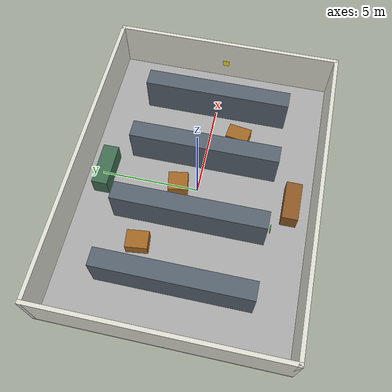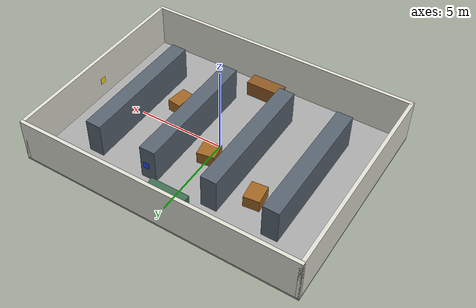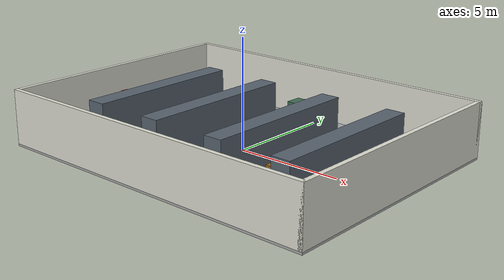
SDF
<?xml version='1.0' encoding='utf-8'?>
<sdf version="1.10">
  <!--Generated from scene.yaml; edit the specification, not this file.-->
  <world name="dev_warehouse_01">
    <physics name="physics" type="ignored">
      <max_step_size>0.004</max_step_size>
      <real_time_factor>1.0</real_time_factor>
      <real_time_update_rate>250</real_time_update_rate>
    </physics>
    <gravity>0 0 -9.81</gravity>
    <scene>
      <ambient>0.35 0.35 0.38 1</ambient>
      <background>0.72 0.78 0.86 1</background>
      <shadows>true</shadows>
    </scene>
    <plugin filename="gz-sim-physics-system" name="gz::sim::systems::Physics" />
    <plugin filename="gz-sim-user-commands-system" name="gz::sim::systems::UserCommands" />
    <plugin filename="gz-sim-scene-broadcaster-system" name="gz::sim::systems::SceneBroadcaster" />
    <plugin filename="gz-sim-sensors-system" name="gz::sim::systems::Sensors">
      <render_engine>ogre2</render_engine>
    </plugin>
    <plugin filename="gz-sim-imu-system" name="gz::sim::systems::Imu" />
    <plugin filename="gz-sim-contact-system" name="gz::sim::systems::Contact" />
    <light name="sun" type="directional">
      <cast_shadows>true</cast_shadows>
      <pose>0 0 10 0 0 0</pose>
      <diffuse>0.85 0.85 0.85 1</diffuse>
      <specular>0.2 0.2 0.2 1</specular>
      <attenuation>
        <range>1000</range>
        <constant>0.9</constant>
        <linear>0.01</linear>
        <quadratic>0.001</quadratic>
      </attenuation>
      <direction>-0.4 0.2 -0.9</direction>
    </light>
    <model name="floor">
      <static>true</static>
      <pose>0 0 -0.05 0 0 0</pose>
      <link name="body">
        <collision name="collision">
          <geometry>
            <box>
              <size>16 12 0.1</size>
            </box>
          </geometry>
        </collision>
        <visual name="visual">
          <geometry>
            <box>
              <size>16 12 0.1</size>
            </box>
          </geometry>
          <material>
            <ambient>0.58 0.58 0.58 1</ambient>
            <diffuse>0.667 0.667 0.667 1</diffuse>
          </material>
        </visual>
      </link>
    </model>
    <model name="wall_north">
      <static>true</static>
      <pose>0 5.9 1.25 0 0 0</pose>
      <link name="body">
        <collision name="collision">
          <geometry>
            <box>
              <size>16 0.2 2.5</size>
            </box>
          </geometry>
        </collision>
        <visual name="visual">
          <geometry>
            <box>
              <size>16 0.2 2.5</size>
            </box>
          </geometry>
          <material>
            <ambient>0.76 0.76 0.72 1</ambient>
            <diffuse>0.874 0.874 0.828 1</diffuse>
          </material>
        </visual>
      </link>
    </model>
    <model name="wall_south">
      <static>true</static>
      <pose>0 -5.9 1.25 0 0 0</pose>
      <link name="body">
        <collision name="collision">
          <geometry>
            <box>
              <size>16 0.2 2.5</size>
            </box>
          </geometry>
        </collision>
        <visual name="visual">
          <geometry>
            <box>
              <size>16 0.2 2.5</size>
            </box>
          </geometry>
          <material>
            <ambient>0.76 0.76 0.72 1</ambient>
            <diffuse>0.874 0.874 0.828 1</diffuse>
          </material>
        </visual>
      </link>
    </model>
    <model name="wall_west">
      <static>true</static>
      <pose>-7.9 0 1.25 0 0 0</pose>
      <link name="body">
        <collision name="collision">
          <geometry>
            <box>
              <size>0.2 12 2.5</size>
            </box>
          </geometry>
        </collision>
        <visual name="visual">
          <geometry>
            <box>
              <size>0.2 12 2.5</size>
            </box>
          </geometry>
          <material>
            <ambient>0.76 0.76 0.72 1</ambient>
            <diffuse>0.874 0.874 0.828 1</diffuse>
          </material>
        </visual>
      </link>
    </model>
    <model name="wall_east">
      <static>true</static>
      <pose>7.9 0 1.25 0 0 0</pose>
      <link name="body">
        <collision name="collision">
          <geometry>
            <box>
              <size>0.2 12 2.5</size>
            </box>
          </geometry>
        </collision>
        <visual name="visual">
          <geometry>
            <box>
              <size>0.2 12 2.5</size>
            </box>
          </geometry>
          <material>
            <ambient>0.76 0.76 0.72 1</ambient>
            <diffuse>0.874 0.874 0.828 1</diffuse>
          </material>
        </visual>
      </link>
    </model>
    <model name="shelf_01">
      <static>true</static>
      <pose>-5.2 0 1 0 0 0</pose>
      <link name="body">
        <collision name="collision">
          <geometry>
            <box>
              <size>0.9 7.6 2</size>
            </box>
          </geometry>
        </collision>
        <visual name="visual">
          <geometry>
            <box>
              <size>0.9 7.6 2</size>
            </box>
          </geometry>
          <material>
            <ambient>0.3 0.34 0.38 1</ambient>
            <diffuse>0.345 0.391 0.437 1</diffuse>
          </material>
        </visual>
      </link>
    </model>
    <model name="shelf_02">
      <static>true</static>
      <pose>-1.8 0 1 0 0 0</pose>
      <link name="body">
        <collision name="collision">
          <geometry>
            <box>
              <size>0.9 7.6 2</size>
            </box>
          </geometry>
        </collision>
        <visual name="visual">
          <geometry>
            <box>
              <size>0.9 7.6 2</size>
            </box>
          </geometry>
          <material>
            <ambient>0.3 0.34 0.38 1</ambient>
            <diffuse>0.345 0.391 0.437 1</diffuse>
          </material>
        </visual>
      </link>
    </model>
    <model name="shelf_03">
      <static>true</static>
      <pose>1.8 0 1 0 0 0</pose>
      <link name="body">
        <collision name="collision">
          <geometry>
            <box>
              <size>0.9 7.6 2</size>
            </box>
          </geometry>
        </collision>
        <visual name="visual">
          <geometry>
            <box>
              <size>0.9 7.6 2</size>
            </box>
          </geometry>
          <material>
            <ambient>0.3 0.34 0.38 1</ambient>
            <diffuse>0.345 0.391 0.437 1</diffuse>
          </material>
        </visual>
      </link>
    </model>
    <model name="shelf_04">
      <static>true</static>
      <pose>5.2 0 1 0 0 0</pose>
      <link name="body">
        <collision name="collision">
          <geometry>
            <box>
              <size>0.9 7.6 2</size>
            </box>
          </geometry>
        </collision>
        <visual name="visual">
          <geometry>
            <box>
              <size>0.9 7.6 2</size>
            </box>
          </geometry>
          <material>
            <ambient>0.3 0.34 0.38 1</ambient>
            <diffuse>0.345 0.391 0.437 1</diffuse>
          </material>
        </visual>
      </link>
    </model>
    <model name="packing_table">
      <static>true</static>
      <pose>0 -4.8 0.45 0 0 0</pose>
      <link name="body">
        <collision name="collision">
          <geometry>
            <box>
              <size>2 0.8 0.9</size>
            </box>
          </geometry>
        </collision>
        <visual name="visual">
          <geometry>
            <box>
              <size>2 0.8 0.9</size>
            </box>
          </geometry>
          <material>
            <ambient>0.48 0.3 0.12 1</ambient>
            <diffuse>0.552 0.345 0.138 1</diffuse>
          </material>
        </visual>
      </link>
    </model>
    <model name="pallet_01">
      <static>true</static>
      <pose>0 1 0.35 0 0 0.174532925</pose>
      <link name="body">
        <collision name="collision">
          <geometry>
            <box>
              <size>1 1 0.7</size>
            </box>
          </geometry>
        </collision>
        <visual name="visual">
          <geometry>
            <box>
              <size>1 1 0.7</size>
            </box>
          </geometry>
          <material>
            <ambient>0.55 0.35 0.12 1</ambient>
            <diffuse>0.6325 0.4025 0.138 1</diffuse>
          </material>
        </visual>
      </link>
    </model>
    <model name="pallet_02">
      <static>true</static>
      <pose>3.5 -1.5 0.35 0 0 -0.13962634</pose>
      <link name="body">
        <collision name="collision">
          <geometry>
            <box>
              <size>0.8 1.2 0.7</size>
            </box>
          </geometry>
        </collision>
        <visual name="visual">
          <geometry>
            <box>
              <size>0.8 1.2 0.7</size>
            </box>
          </geometry>
          <material>
            <ambient>0.55 0.35 0.12 1</ambient>
            <diffuse>0.6325 0.4025 0.138 1</diffuse>
          </material>
        </visual>
      </link>
    </model>
    <model name="pallet_03">
      <static>true</static>
      <pose>-3.5 2.2 0.35 0 0 0.122173048</pose>
      <link name="body">
        <collision name="collision">
          <geometry>
            <box>
              <size>0.9 1.1 0.7</size>
            </box>
          </geometry>
        </collision>
        <visual name="visual">
          <geometry>
            <box>
              <size>0.9 1.1 0.7</size>
            </box>
          </geometry>
          <material>
            <ambient>0.55 0.35 0.12 1</ambient>
            <diffuse>0.6325 0.4025 0.138 1</diffuse>
          </material>
        </visual>
      </link>
    </model>
    <model name="loading_island">
      <static>true</static>
      <pose>0 4.8 0.5 0 0 0</pose>
      <link name="body">
        <collision name="collision">
          <geometry>
            <box>
              <size>2.2 0.8 1</size>
            </box>
          </geometry>
        </collision>
        <visual name="visual">
          <geometry>
            <box>
              <size>2.2 0.8 1</size>
            </box>
          </geometry>
          <material>
            <ambient>0.22 0.38 0.28 1</ambient>
            <diffuse>0.253 0.437 0.322 1</diffuse>
          </material>
        </visual>
      </link>
    </model>
    <model name="target_panel_01">
      <static>true</static>
      <pose>-7.76 0 1.05 0 0 0</pose>
      <link name="body">
        <visual name="visual">
          <geometry>
            <box>
              <size>0.02 0.35 0.35</size>
            </box>
          </geometry>
          <material>
            <ambient>0.9 0.1 0.1 1</ambient>
            <diffuse>1 0.115 0.115 1</diffuse>
          </material>
        </visual>
      </link>
    </model>
    <model name="target_panel_02">
      <static>true</static>
      <pose>-1.8 -3.94 1.05 0 0 -1.57079633</pose>
      <link name="body">
        <visual name="visual">
          <geometry>
            <box>
              <size>0.02 0.35 0.35</size>
            </box>
          </geometry>
          <material>
            <ambient>0.1 0.8 0.2 1</ambient>
            <diffuse>0.115 0.92 0.23 1</diffuse>
          </material>
        </visual>
      </link>
    </model>
    <model name="target_panel_03">
      <static>true</static>
      <pose>1.8 3.94 1.05 0 0 1.57079633</pose>
      <link name="body">
        <visual name="visual">
          <geometry>
            <box>
              <size>0.02 0.35 0.35</size>
            </box>
          </geometry>
          <material>
            <ambient>0.1 0.25 0.9 1</ambient>
            <diffuse>0.115 0.2875 1 1</diffuse>
          </material>
        </visual>
      </link>
    </model>
    <model name="target_panel_04">
      <static>true</static>
      <pose>7.76 0 1.05 0 0 3.14159265</pose>
      <link name="body">
        <visual name="visual">
          <geometry>
            <box>
              <size>0.02 0.35 0.35</size>
            </box>
          </geometry>
          <material>
            <ambient>0.9 0.75 0.1 1</ambient>
            <diffuse>1 0.8625 0.115 1</diffuse>
          </material>
        </visual>
      </link>
    </model>
  </world>
</sdf>
